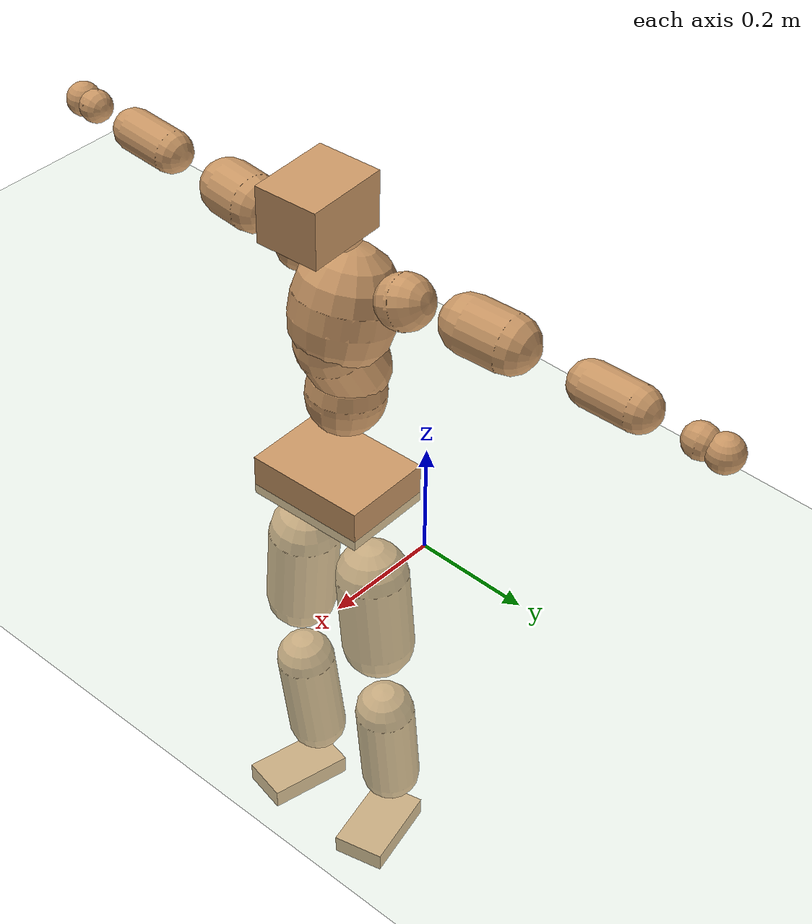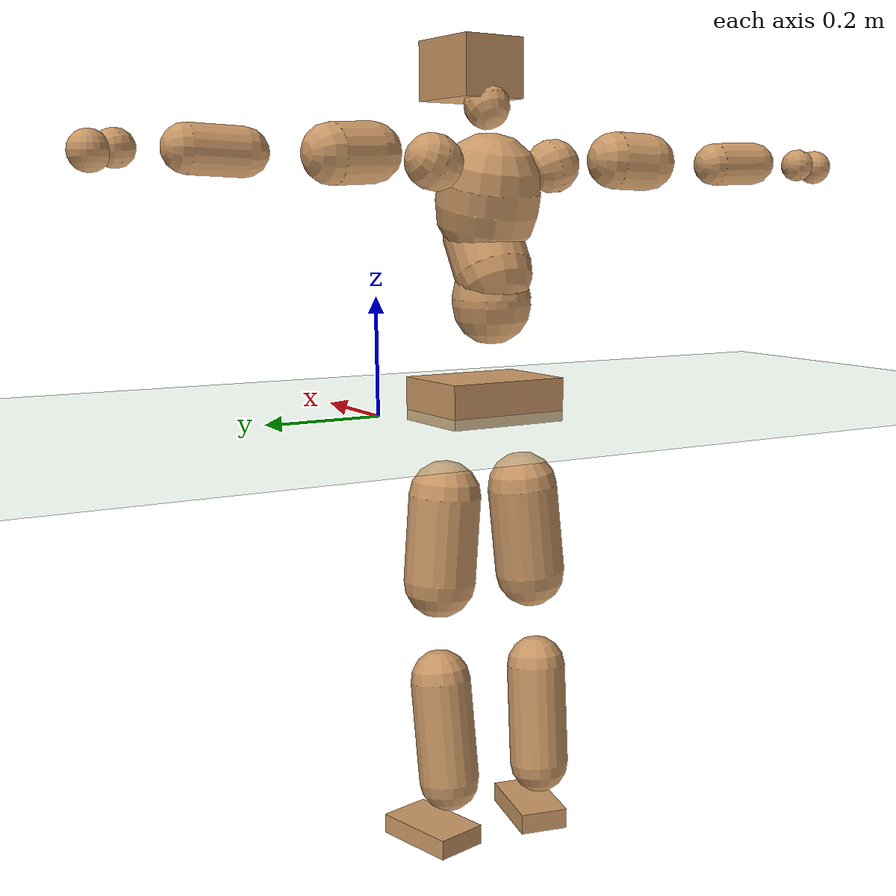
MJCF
<mujoco model="humanoid">
  <compiler coordinate="local" angle="radian"/>
  <default>
    <joint damping="0.0" armature="0.01" stiffness="0.0" limited="true"/>
    <geom conaffinity="1" condim="3" contype="7" margin="0.001" rgba="0.8 0.6 .4 1"/>
  </default>
  <asset>
    <texture type="skybox" builtin="gradient" rgb1=".4 .5 .6" rgb2="0 0 0" width="100" height="100"/>
    <texture builtin="flat" height="1278" mark="cross" markrgb="1 1 1" name="texgeom" random="0.01" rgb1="0.8 0.6 0.4" rgb2="0.8 0.6 0.4" type="cube" width="127"/>
    <texture builtin="checker" height="100" name="texplane" rgb1="0 0 0" rgb2="0.8 0.8 0.8" type="2d" width="100"/>
    <material name="MatPlane" reflectance="0.5" shininess="1" specular="1" texrepeat="60 60" texture="texplane"/>
    <material name="geom" texture="texgeom" texuniform="true"/>
  </asset>
  <worldbody>
    <light cutoff="100" diffuse="1 1 1" dir="-0 0 -1.3" directional="true" exponent="1" pos="0 0 1.3" specular=".1 .1 .1"/>
    <geom conaffinity="1" condim="3" name="floor" pos="0 0 0" rgba="0.8 0.9 0.8 1" size="100 100 .2" type="plane" material="MatPlane"/>
    <body name="Pelvis" pos="-0.0019 -0.2015 0.0293">
      <freejoint name="Pelvis"/>
      <geom type="box" contype="1" conaffinity="1" density="5359.375133" pos="-0.0052 -0.0002 -0.0117" size="0.0817 0.1096 0.0379" quat="0.9998 0.0000 0.0000 0.0206" name="Pelvis"/>
      <body name="L_Hip" pos="-0.0038 0.0715 -0.0845">
        <joint name="L_Hip_x" type="hinge" pos="0 0 0" axis="1 0 0" stiffness="1600" damping="160" armature="0.02" range="-180.0000 180.0000"/>
        <joint name="L_Hip_y" type="hinge" pos="0 0 0" axis="0 1 0" stiffness="1600" damping="160" armature="0.02" range="-180.0000 180.0000"/>
        <joint name="L_Hip_z" type="hinge" pos="0 0 0" axis="0 0 1" stiffness="1600" damping="160" armature="0.02" range="-180.0000 180.0000"/>
        <geom type="capsule" contype="1" conaffinity="1" density="2040.816327" size="0.0631" fromto="-0.0011 0.0078 -0.0928 -0.0028 0.0205 -0.2433" name="L_Hip"/>
        <body name="L_Knee" pos="-0.0039 0.0283 -0.3361">
          <joint name="L_Knee_x" type="hinge" pos="0 0 0" axis="1 0 0" stiffness="1600" damping="160" armature="0.02" range="-180.0000 180.0000"/>
          <joint name="L_Knee_y" type="hinge" pos="0 0 0" axis="0 1 0" stiffness="1600" damping="160" armature="0.02" range="-180.0000 180.0000"/>
          <joint name="L_Knee_z" type="hinge" pos="0 0 0" axis="0 0 1" stiffness="1600" damping="160" armature="0.02" range="-180.0000 180.0000"/>
          <geom type="capsule" contype="1" conaffinity="1" density="1234.567901" size="0.0527" fromto="-0.0097 -0.0021 -0.0821 -0.0312 -0.0067 -0.2627" name="L_Knee"/>
          <body name="L_Ankle" pos="-0.0409 -0.0089 -0.3447">
            <joint name="L_Ankle_x" type="hinge" pos="0 0 0" axis="1 0 0" stiffness="1600" damping="160" armature="0.02" range="-180.0000 180.0000"/>
            <joint name="L_Ankle_y" type="hinge" pos="0 0 0" axis="0 1 0" stiffness="1600" damping="160" armature="0.02" range="-180.0000 180.0000"/>
            <joint name="L_Ankle_z" type="hinge" pos="0 0 0" axis="0 0 1" stiffness="1600" damping="160" armature="0.02" range="-180.0000 180.0000"/>
            <geom type="box" contype="1" conaffinity="1" density="1000.000001" pos="0.0533 0.0134 -0.0250" size="0.0781 0.0464 0.0175" quat="0.9925 0.0000 0.0000 0.1225" name="L_Ankle"/>
            <body name="L_Toe" pos="0.1065 0.0267 -0.05">
              <joint name="L_Toe_x" type="hinge" pos="0 0 0" axis="1 0 0" stiffness="1000" damping="100" armature="0.02" range="-180.0000 180.0000"/>
              <joint name="L_Toe_y" type="hinge" pos="0 0 0" axis="0 1 0" stiffness="1000" damping="100" armature="0.02" range="-180.0000 180.0000"/>
              <joint name="L_Toe_z" type="hinge" pos="0 0 0" axis="0 0 1" stiffness="1000" damping="100" armature="0.02" range="-180.0000 180.0000"/>
              <geom type="box" contype="1" conaffinity="1" density="8208826.648353" pos="0.0000 0.0000 0.0259" size="0.0009 0.0023 0.0009" quat="0.9917 0.0000 0.0000 0.1290" name="L_Toe"/>
            </body>
          </body>
        </body>
      </body>
      <body name="R_Hip" pos="-0.0022 -0.07 -0.0834">
        <joint name="R_Hip_x" type="hinge" pos="0 0 0" axis="1 0 0" stiffness="1600" damping="160" armature="0.02" range="-180.0000 180.0000"/>
        <joint name="R_Hip_y" type="hinge" pos="0 0 0" axis="0 1 0" stiffness="1600" damping="160" armature="0.02" range="-180.0000 180.0000"/>
        <joint name="R_Hip_z" type="hinge" pos="0 0 0" axis="0 0 1" stiffness="1600" damping="160" armature="0.02" range="-180.0000 180.0000"/>
        <geom type="capsule" contype="1" conaffinity="1" density="2040.816327" size="0.0625" fromto="-0.0018 -0.0086 -0.0921 -0.0049 -0.0235 -0.2508" name="R_Hip"/>
        <body name="R_Knee" pos="-0.0066 -0.0321 -0.3429">
          <joint name="R_Knee_x" type="hinge" pos="0 0 0" axis="1 0 0" stiffness="1600" damping="160" armature="0.02" range="-180.0000 180.0000"/>
          <joint name="R_Knee_y" type="hinge" pos="0 0 0" axis="0 1 0" stiffness="1600" damping="160" armature="0.02" range="-180.0000 180.0000"/>
          <joint name="R_Knee_z" type="hinge" pos="0 0 0" axis="0 0 1" stiffness="1600" damping="160" armature="0.02" range="-180.0000 180.0000"/>
          <geom type="capsule" contype="1" conaffinity="1" density="1234.567901" size="0.0528" fromto="-0.0096 0.0025 -0.0822 -0.0307 0.0080 -0.2627" name="R_Knee"/>
          <body name="R_Ankle" pos="-0.0404 0.0106 -0.3449">
            <joint name="R_Ankle_x" type="hinge" pos="0 0 0" axis="1 0 0" stiffness="1600" damping="160" armature="0.02" range="-180.0000 180.0000"/>
            <joint name="R_Ankle_y" type="hinge" pos="0 0 0" axis="0 1 0" stiffness="1600" damping="160" armature="0.02" range="-180.0000 180.0000"/>
            <joint name="R_Ankle_z" type="hinge" pos="0 0 0" axis="0 0 1" stiffness="1600" damping="160" armature="0.02" range="-180.0000 180.0000"/>
            <geom type="box" contype="1" conaffinity="1" density="1000.000013" pos="0.0547 -0.0111 -0.0210" size="0.0775 0.0435 0.0181" quat="0.9950 0.0000 0.0000 -0.1002" name="R_Ankle"/>
            <body name="R_Toe" pos="0.1093 -0.0223 -0.042">
              <joint name="R_Toe_x" type="hinge" pos="0 0 0" axis="1 0 0" stiffness="1000" damping="100" armature="0.02" range="-180.0000 180.0000"/>
              <joint name="R_Toe_y" type="hinge" pos="0 0 0" axis="0 1 0" stiffness="1000" damping="100" armature="0.02" range="-180.0000 180.0000"/>
              <joint name="R_Toe_z" type="hinge" pos="0 0 0" axis="0 0 1" stiffness="1000" damping="100" armature="0.02" range="-180.0000 180.0000"/>
              <geom type="box" contype="1" conaffinity="1" density="8385669.340713" pos="0.0000 0.0000 0.0230" size="0.0008 0.0022 0.001" quat="0.9960 0.0000 0.0000 -0.0899" name="R_Toe"/>
            </body>
          </body>
        </body>
      </body>
      <body name="Torso" pos="-0.0255 -0.0028 0.0976">
        <joint name="Torso_x" type="hinge" pos="0 0 0" axis="1 0 0" stiffness="2000" damping="200" armature="0.02" range="-180.0000 180.0000"/>
        <joint name="Torso_y" type="hinge" pos="0 0 0" axis="0 1 0" stiffness="2000" damping="200" armature="0.02" range="-180.0000 180.0000"/>
        <joint name="Torso_z" type="hinge" pos="0 0 0" axis="0 0 1" stiffness="2000" damping="200" armature="0.02" range="-180.0000 180.0000"/>
        <geom type="capsule" contype="1" conaffinity="1" density="2040.816327" size="0.068" fromto="-0.0036 0.0023 0.0679 -0.0029 0.0019 0.0554" name="Torso"/>
        <body name="Spine" pos="-0.0064 0.0041 0.1233">
          <joint name="Spine_x" type="hinge" pos="0 0 0" axis="1 0 0" stiffness="2000" damping="200" armature="0.02" range="-180.0000 180.0000"/>
          <joint name="Spine_y" type="hinge" pos="0 0 0" axis="0 1 0" stiffness="2000" damping="200" armature="0.02" range="-180.0000 180.0000"/>
          <joint name="Spine_z" type="hinge" pos="0 0 0" axis="0 0 1" stiffness="2000" damping="200" armature="0.02" range="-180.0000 180.0000"/>
          <geom type="capsule" contype="1" conaffinity="1" density="2040.816327" size="0.0671" fromto="0.0327 0.0022 0.0586 -0.0068 -0.0005 -0.0122" name="Spine"/>
          <body name="Chest" pos="0.0259 0.0018 0.0464">
            <joint name="Chest_x" type="hinge" pos="0 0 0" axis="1 0 0" stiffness="2000" damping="200" armature="0.02" range="-180.0000 180.0000"/>
            <joint name="Chest_y" type="hinge" pos="0 0 0" axis="0 1 0" stiffness="2000" damping="200" armature="0.02" range="-180.0000 180.0000"/>
            <joint name="Chest_z" type="hinge" pos="0 0 0" axis="0 0 1" stiffness="2000" damping="200" armature="0.02" range="-180.0000 180.0000"/>
            <geom type="capsule" contype="1" conaffinity="1" density="2040.816327" size="0.0881" fromto="-0.0220 -0.0010 0.0853 -0.0122 -0.0006 0.0474" name="Chest"/>
            <body name="Neck" pos="-0.0367 -0.0029 0.187">
              <joint name="Neck_x" type="hinge" pos="0 0 0" axis="1 0 0" stiffness="1000" damping="100" armature="0.02" range="-180.0000 180.0000"/>
              <joint name="Neck_y" type="hinge" pos="0 0 0" axis="0 1 0" stiffness="1000" damping="100" armature="0.02" range="-180.0000 180.0000"/>
              <joint name="Neck_z" type="hinge" pos="0 0 0" axis="0 0 1" stiffness="1000" damping="100" armature="0.02" range="-180.0000 180.0000"/>
              <geom type="capsule" contype="1" conaffinity="1" density="1000" size="0.0392" fromto="0.0239 0.0009 0.0298 0.0251 0.0009 0.0314" name="Neck"/>
              <body name="Head" pos="0.049 0.0018 0.0612">
                <joint name="Head_x" type="hinge" pos="0 0 0" axis="1 0 0" stiffness="1000" damping="100" armature="0.02" range="-180.0000 180.0000"/>
                <joint name="Head_y" type="hinge" pos="0 0 0" axis="0 1 0" stiffness="1000" damping="100" armature="0.02" range="-180.0000 180.0000"/>
                <joint name="Head_z" type="hinge" pos="0 0 0" axis="0 0 1" stiffness="1000" damping="100" armature="0.02" range="-180.0000 180.0000"/>
                <geom type="box" contype="1" conaffinity="1" density="2249.999951" pos="0.0255 0.0019 0.0316" size="0.0739 0.0575 0.0504" quat="0.9993 0.0000 0.0000 0.0370" name="Head"/>
              </body>
            </body>
            <body name="L_Thorax" pos="-0.0304 0.0703 0.1065">
              <joint name="L_Thorax_x" type="hinge" pos="0 0 0" axis="1 0 0" stiffness="1000" damping="100" armature="0.02" range="-180.0000 180.0000"/>
              <joint name="L_Thorax_y" type="hinge" pos="0 0 0" axis="0 1 0" stiffness="1000" damping="100" armature="0.02" range="-180.0000 180.0000"/>
              <joint name="L_Thorax_z" type="hinge" pos="0 0 0" axis="0 0 1" stiffness="1000" damping="100" armature="0.02" range="-180.0000 180.0000"/>
              <geom type="capsule" contype="1" conaffinity="1" density="1000" size="0.0467" fromto="-0.0045 0.0435 0.0165 -0.0039 0.0374 0.0142" name="L_Thorax"/>
              <body name="L_Shoulder" pos="-0.0084 0.0809 0.0308">
                <joint name="L_Shoulder_x" type="hinge" pos="0 0 0" axis="1 0 0" stiffness="1000" damping="100" armature="0.02" range="-720.0000 720.0000"/>
                <joint name="L_Shoulder_y" type="hinge" pos="0 0 0" axis="0 1 0" stiffness="1000" damping="100" armature="0.02" range="-720.0000 720.0000"/>
                <joint name="L_Shoulder_z" type="hinge" pos="0 0 0" axis="0 0 1" stiffness="1000" damping="100" armature="0.02" range="-720.0000 720.0000"/>
                <geom type="capsule" contype="1" conaffinity="1" density="1000" size="0.049" fromto="-0.0100 0.0783 -0.0039 -0.0190 0.1494 -0.0075" name="L_Shoulder"/>
                <body name="L_Elbow" pos="-0.029 0.2277 -0.0114">
                  <joint name="L_Elbow_x" type="hinge" pos="0 0 0" axis="1 0 0" stiffness="1000" damping="100" armature="0.02" range="-720.0000 720.0000"/>
                  <joint name="L_Elbow_y" type="hinge" pos="0 0 0" axis="0 1 0" stiffness="1000" damping="100" armature="0.02" range="-720.0000 720.0000"/>
                  <joint name="L_Elbow_z" type="hinge" pos="0 0 0" axis="0 0 1" stiffness="1000" damping="100" armature="0.02" range="-720.0000 720.0000"/>
                  <geom type="capsule" contype="1" conaffinity="1" density="1000" size="0.0378" fromto="0.0001 0.0678 0.0024 0.0003 0.1548 0.0055" name="L_Elbow"/>
                  <body name="L_Wrist" pos="0.0005 0.2226 0.0079">
                    <joint name="L_Wrist_x" type="hinge" pos="0 0 0" axis="1 0 0" stiffness="600" damping="60" armature="0.02" range="-180.0000 180.0000"/>
                    <joint name="L_Wrist_y" type="hinge" pos="0 0 0" axis="0 1 0" stiffness="600" damping="60" armature="0.02" range="-180.0000 180.0000"/>
                    <joint name="L_Wrist_z" type="hinge" pos="0 0 0" axis="0 0 1" stiffness="600" damping="60" armature="0.02" range="-180.0000 180.0000"/>
                    <geom type="capsule" contype="1" conaffinity="1" density="1000" size="0.0289" fromto="-0.0061 0.0370 -0.0046 -0.0065 0.0390 -0.0048" name="L_Wrist"/>
                    <body name="L_Hand" pos="-0.0126 0.076 -0.0094">
                      <joint name="L_Hand_x" type="hinge" pos="0 0 0" axis="1 0 0" stiffness="600" damping="60" armature="0.02" range="-180.0000 180.0000"/>
                      <joint name="L_Hand_y" type="hinge" pos="0 0 0" axis="0 1 0" stiffness="600" damping="60" armature="0.02" range="-180.0000 180.0000"/>
                      <joint name="L_Hand_z" type="hinge" pos="0 0 0" axis="0 0 1" stiffness="600" damping="60" armature="0.02" range="-180.0000 180.0000"/>
                      <geom type="sphere" contype="1" conaffinity="1" density="1000" size="0.0308" pos="0.0000 0.0000 0.0000" name="L_Hand"/>
                    </body>
                  </body>
                </body>
              </body>
            </body>
            <body name="R_Thorax" pos="-0.0358 -0.0721 0.1046">
              <joint name="R_Thorax_x" type="hinge" pos="0 0 0" axis="1 0 0" stiffness="1000" damping="100" armature="0.02" range="-180.0000 180.0000"/>
              <joint name="R_Thorax_y" type="hinge" pos="0 0 0" axis="0 1 0" stiffness="1000" damping="100" armature="0.02" range="-180.0000 180.0000"/>
              <joint name="R_Thorax_z" type="hinge" pos="0 0 0" axis="0 0 1" stiffness="1000" damping="100" armature="0.02" range="-180.0000 180.0000"/>
              <geom type="capsule" contype="1" conaffinity="1" density="1000" size="0.0454" fromto="-0.0053 -0.0413 0.0142 -0.0056 -0.0432 0.0148" name="R_Thorax"/>
              <body name="R_Shoulder" pos="-0.0109 -0.0845 0.029">
                <joint name="R_Shoulder_x" type="hinge" pos="0 0 0" axis="1 0 0" stiffness="1000" damping="100" armature="0.02" range="-720.0000 720.0000"/>
                <joint name="R_Shoulder_y" type="hinge" pos="0 0 0" axis="0 1 0" stiffness="1000" damping="100" armature="0.02" range="-720.0000 720.0000"/>
                <joint name="R_Shoulder_z" type="hinge" pos="0 0 0" axis="0 0 1" stiffness="1000" damping="100" armature="0.02" range="-720.0000 720.0000"/>
                <geom type="capsule" contype="1" conaffinity="1" density="1000" size="0.0493" fromto="-0.0080 -0.0788 -0.0028 -0.0144 -0.1422 -0.0051" name="R_Shoulder"/>
                <body name="R_Elbow" pos="-0.0223 -0.221 -0.008">
                  <joint name="R_Elbow_x" type="hinge" pos="0 0 0" axis="1 0 0" stiffness="1000" damping="100" armature="0.02" range="-720.0000 720.0000"/>
                  <joint name="R_Elbow_y" type="hinge" pos="0 0 0" axis="0 1 0" stiffness="1000" damping="100" armature="0.02" range="-720.0000 720.0000"/>
                  <joint name="R_Elbow_z" type="hinge" pos="0 0 0" axis="0 0 1" stiffness="1000" damping="100" armature="0.02" range="-720.0000 720.0000"/>
                  <geom type="capsule" contype="1" conaffinity="1" density="1000" size="0.0374" fromto="-0.0006 -0.0674 0.0021 -0.0013 -0.1570 0.0050" name="R_Elbow"/>
                  <body name="R_Wrist" pos="-0.0019 -0.2243 0.0071">
                    <joint name="R_Wrist_x" type="hinge" pos="0 0 0" axis="1 0 0" stiffness="600" damping="60" armature="0.02" range="-180.0000 180.0000"/>
                    <joint name="R_Wrist_y" type="hinge" pos="0 0 0" axis="0 1 0" stiffness="600" damping="60" armature="0.02" range="-180.0000 180.0000"/>
                    <joint name="R_Wrist_z" type="hinge" pos="0 0 0" axis="0 0 1" stiffness="600" damping="60" armature="0.02" range="-180.0000 180.0000"/>
                    <geom type="capsule" contype="1" conaffinity="1" density="1000" size="0.029" fromto="-0.0047 -0.0362 -0.0033 -0.0049 -0.0382 -0.0035" name="R_Wrist"/>
                    <body name="R_Hand" pos="-0.0096 -0.0744 -0.0067">
                      <joint name="R_Hand_x" type="hinge" pos="0 0 0" axis="1 0 0" stiffness="600" damping="60" armature="0.02" range="-180.0000 180.0000"/>
                      <joint name="R_Hand_y" type="hinge" pos="0 0 0" axis="0 1 0" stiffness="600" damping="60" armature="0.02" range="-180.0000 180.0000"/>
                      <joint name="R_Hand_z" type="hinge" pos="0 0 0" axis="0 0 1" stiffness="600" damping="60" armature="0.02" range="-180.0000 180.0000"/>
                      <geom type="sphere" contype="1" conaffinity="1" density="1000" size="0.0302" pos="0.0000 0.0000 0.0000" name="R_Hand"/>
                    </body>
                  </body>
                </body>
              </body>
            </body>
          </body>
        </body>
      </body>
    </body>
  </worldbody>
  <actuator>
    <motor name="L_Hip_x" joint="L_Hip_x" gear="500"/>
    <motor name="L_Hip_y" joint="L_Hip_y" gear="500"/>
    <motor name="L_Hip_z" joint="L_Hip_z" gear="500"/>
    <motor name="L_Knee_x" joint="L_Knee_x" gear="500"/>
    <motor name="L_Knee_y" joint="L_Knee_y" gear="500"/>
    <motor name="L_Knee_z" joint="L_Knee_z" gear="500"/>
    <motor name="L_Ankle_x" joint="L_Ankle_x" gear="500"/>
    <motor name="L_Ankle_y" joint="L_Ankle_y" gear="500"/>
    <motor name="L_Ankle_z" joint="L_Ankle_z" gear="500"/>
    <motor name="L_Toe_x" joint="L_Toe_x" gear="500"/>
    <motor name="L_Toe_y" joint="L_Toe_y" gear="500"/>
    <motor name="L_Toe_z" joint="L_Toe_z" gear="500"/>
    <motor name="R_Hip_x" joint="R_Hip_x" gear="500"/>
    <motor name="R_Hip_y" joint="R_Hip_y" gear="500"/>
    <motor name="R_Hip_z" joint="R_Hip_z" gear="500"/>
    <motor name="R_Knee_x" joint="R_Knee_x" gear="500"/>
    <motor name="R_Knee_y" joint="R_Knee_y" gear="500"/>
    <motor name="R_Knee_z" joint="R_Knee_z" gear="500"/>
    <motor name="R_Ankle_x" joint="R_Ankle_x" gear="500"/>
    <motor name="R_Ankle_y" joint="R_Ankle_y" gear="500"/>
    <motor name="R_Ankle_z" joint="R_Ankle_z" gear="500"/>
    <motor name="R_Toe_x" joint="R_Toe_x" gear="500"/>
    <motor name="R_Toe_y" joint="R_Toe_y" gear="500"/>
    <motor name="R_Toe_z" joint="R_Toe_z" gear="500"/>
    <motor name="Torso_x" joint="Torso_x" gear="500"/>
    <motor name="Torso_y" joint="Torso_y" gear="500"/>
    <motor name="Torso_z" joint="Torso_z" gear="500"/>
    <motor name="Spine_x" joint="Spine_x" gear="500"/>
    <motor name="Spine_y" joint="Spine_y" gear="500"/>
    <motor name="Spine_z" joint="Spine_z" gear="500"/>
    <motor name="Chest_x" joint="Chest_x" gear="500"/>
    <motor name="Chest_y" joint="Chest_y" gear="500"/>
    <motor name="Chest_z" joint="Chest_z" gear="500"/>
    <motor name="Neck_x" joint="Neck_x" gear="500"/>
    <motor name="Neck_y" joint="Neck_y" gear="500"/>
    <motor name="Neck_z" joint="Neck_z" gear="500"/>
    <motor name="Head_x" joint="Head_x" gear="500"/>
    <motor name="Head_y" joint="Head_y" gear="500"/>
    <motor name="Head_z" joint="Head_z" gear="500"/>
    <motor name="L_Thorax_x" joint="L_Thorax_x" gear="500"/>
    <motor name="L_Thorax_y" joint="L_Thorax_y" gear="500"/>
    <motor name="L_Thorax_z" joint="L_Thorax_z" gear="500"/>
    <motor name="L_Shoulder_x" joint="L_Shoulder_x" gear="500"/>
    <motor name="L_Shoulder_y" joint="L_Shoulder_y" gear="500"/>
    <motor name="L_Shoulder_z" joint="L_Shoulder_z" gear="500"/>
    <motor name="L_Elbow_x" joint="L_Elbow_x" gear="500"/>
    <motor name="L_Elbow_y" joint="L_Elbow_y" gear="500"/>
    <motor name="L_Elbow_z" joint="L_Elbow_z" gear="500"/>
    <motor name="L_Wrist_x" joint="L_Wrist_x" gear="500"/>
    <motor name="L_Wrist_y" joint="L_Wrist_y" gear="500"/>
    <motor name="L_Wrist_z" joint="L_Wrist_z" gear="500"/>
    <motor name="L_Hand_x" joint="L_Hand_x" gear="500"/>
    <motor name="L_Hand_y" joint="L_Hand_y" gear="500"/>
    <motor name="L_Hand_z" joint="L_Hand_z" gear="500"/>
    <motor name="R_Thorax_x" joint="R_Thorax_x" gear="500"/>
    <motor name="R_Thorax_y" joint="R_Thorax_y" gear="500"/>
    <motor name="R_Thorax_z" joint="R_Thorax_z" gear="500"/>
    <motor name="R_Shoulder_x" joint="R_Shoulder_x" gear="500"/>
    <motor name="R_Shoulder_y" joint="R_Shoulder_y" gear="500"/>
    <motor name="R_Shoulder_z" joint="R_Shoulder_z" gear="500"/>
    <motor name="R_Elbow_x" joint="R_Elbow_x" gear="500"/>
    <motor name="R_Elbow_y" joint="R_Elbow_y" gear="500"/>
    <motor name="R_Elbow_z" joint="R_Elbow_z" gear="500"/>
    <motor name="R_Wrist_x" joint="R_Wrist_x" gear="500"/>
    <motor name="R_Wrist_y" joint="R_Wrist_y" gear="500"/>
    <motor name="R_Wrist_z" joint="R_Wrist_z" gear="500"/>
    <motor name="R_Hand_x" joint="R_Hand_x" gear="500"/>
    <motor name="R_Hand_y" joint="R_Hand_y" gear="500"/>
    <motor name="R_Hand_z" joint="R_Hand_z" gear="500"/>
  </actuator>
  <contact>
    <exclude body1="Torso" body2="Chest"/>
    <exclude body1="Head" body2="Chest"/>
    <exclude body1="R_Knee" body2="R_Toe"/>
    <exclude body1="R_Knee" body2="L_Ankle"/>
    <exclude body1="R_Knee" body2="L_Toe"/>
    <exclude body1="L_Knee" body2="L_Toe"/>
    <exclude body1="L_Knee" body2="R_Ankle"/>
    <exclude body1="L_Knee" body2="R_Toe"/>
    <exclude body1="L_Shoulder" body2="Chest"/>
    <exclude body1="R_Shoulder" body2="Chest"/>
  </contact>
  <sensor/>
  <size njmax="700" nconmax="700"/>
</mujoco>
